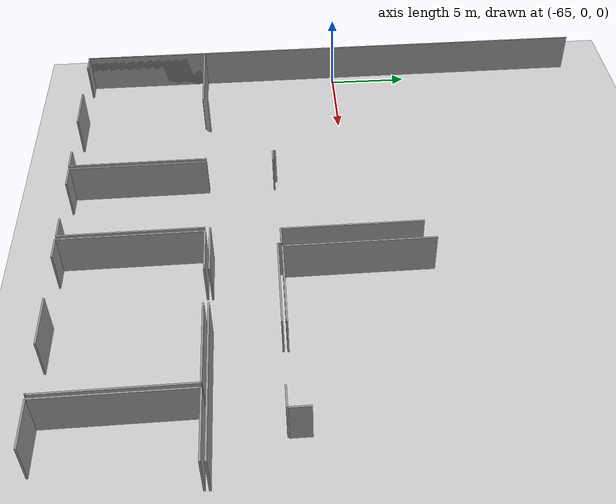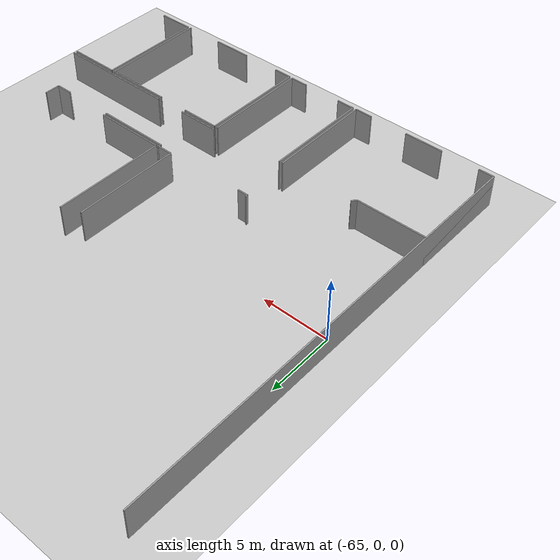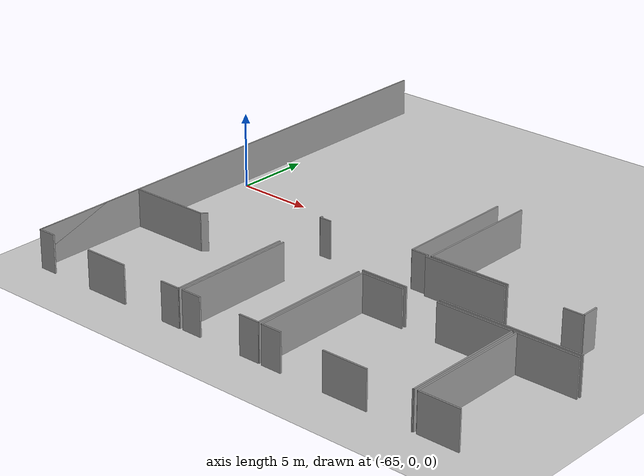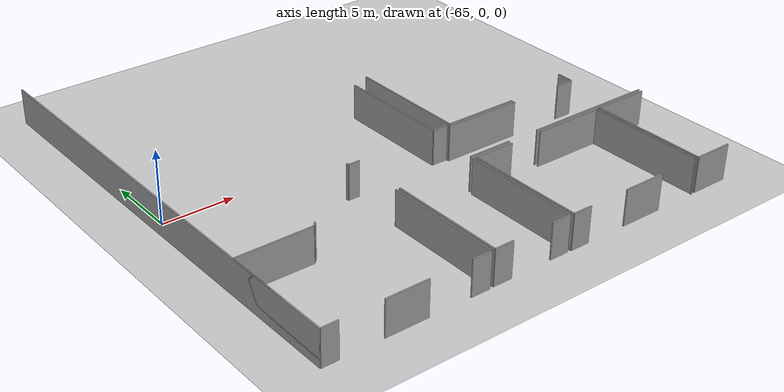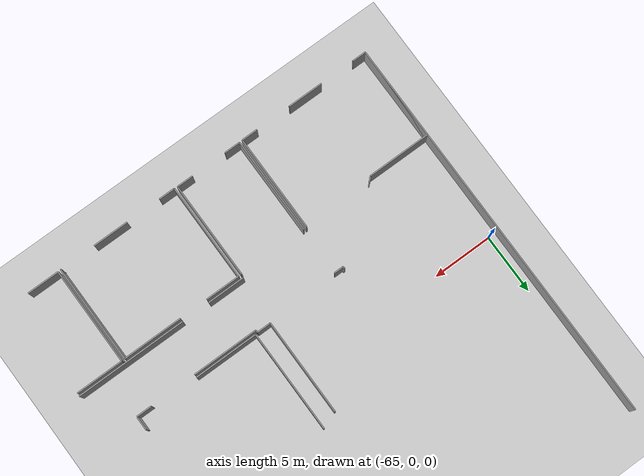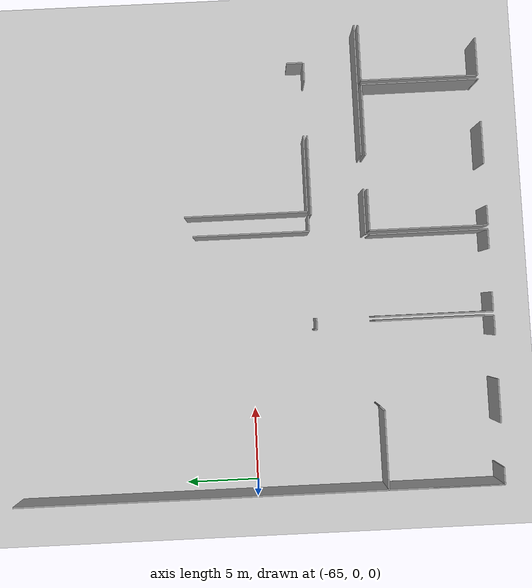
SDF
<sdf version="1.6">
 <world name="default">
  <model name="ground_plane">
   <static>1</static>
   <link name="link">
    <collision name="collision">
     <geometry><plane><normal>0 0 1</normal><size>100 100</size></plane></geometry>
     <surface><friction><ode><mu>100</mu><mu2>50</mu2></ode></friction></surface>
    </collision>
    <visual name="visual">
     <cast_shadows>0</cast_shadows>
     <geometry><plane><normal>0 0 1</normal><size>100 100</size></plane></geometry>
     <material>
      <script><uri>file://media/materials/scripts/gazebo.material</uri><name>Gazebo/Grey</name></script>
     </material>
    </visual>
   </link>
  </model>
  <model name="50041171">
   <static>1</static>
   <link name="Wall_24">
    <collision name="Wall_24_Collision">
     <geometry><box><size>5.40003935334 0.1 2.5</size></box></geometry>
     <pose>2.70001967667 0 1.25 0 0 0</pose>
    </collision>
    <visual name="Wall_24_Visual">
     <pose>2.70001967667 0 1.25 0 0 0</pose>
     <geometry><box><size>5.40003935334 0.1 2.5</size></box></geometry>
     <material>
      <script><uri>file://media/materials/scripts/gazebo.material</uri><name>Gazebo/Grey</name></script>
      <ambient>1 1 1 1</ambient>
     </material>
    </visual>
    <pose>24.7119907075 -21.0527652066 0 0 0 3.14159265359</pose>
   </link>
   <link name="Wall_25">
    <collision name="Wall_25_Collision">
     <geometry><box><size>8.60809790094 0.1 2.5</size></box></geometry>
     <pose>4.30404895047 0 1.25 0 0 0</pose>
    </collision>
    <visual name="Wall_25_Visual">
     <pose>4.30404895047 0 1.25 0 0 0</pose>
     <geometry><box><size>8.60809790094 0.1 2.5</size></box></geometry>
     <material>
      <script><uri>file://media/materials/scripts/gazebo.material</uri><name>Gazebo/Grey</name></script>
      <ambient>1 1 1 1</ambient>
     </material>
    </visual>
    <pose>19.3119513542 -21.0527652066 0 0 0 1.57079632679</pose>
   </link>
   <link name="Wall_78">
    <collision name="Wall_78_Collision">
     <geometry><box><size>0.184706785912 0.1 2.5</size></box></geometry>
     <pose>0.0923533929558 0 1.25 0 0 0</pose>
    </collision>
    <visual name="Wall_78_Visual">
     <pose>0.0923533929558 0 1.25 0 0 0</pose>
     <geometry><box><size>0.184706785912 0.1 2.5</size></box></geometry>
     <material>
      <script><uri>file://media/materials/scripts/gazebo.material</uri><name>Gazebo/Grey</name></script>
      <ambient>1 1 1 1</ambient>
     </material>
    </visual>
    <pose>19.0999511257 -21.2779678445 0 0 0 1.57079632679</pose>
   </link>
   <link name="Wall_79">
    <collision name="Wall_79_Collision">
     <geometry><box><size>1.16790545044 0.1 2.5</size></box></geometry>
     <pose>0.583952725219 0 1.25 0 0 0</pose>
    </collision>
    <visual name="Wall_79_Visual">
     <pose>0.583952725219 0 1.25 0 0 0</pose>
     <geometry><box><size>1.16790545044 0.1 2.5</size></box></geometry>
     <material>
      <script><uri>file://media/materials/scripts/gazebo.material</uri><name>Gazebo/Grey</name></script>
      <ambient>1 1 1 1</ambient>
     </material>
    </visual>
    <pose>19.0999511257 -21.0932610586 0 0 0 3.14159265359</pose>
   </link>
   <link name="Wall_80">
    <collision name="Wall_80_Collision">
     <geometry><box><size>8.12278240779 0.1 2.5</size></box></geometry>
     <pose>4.06139120389 0 1.25 0 0 0</pose>
    </collision>
    <visual name="Wall_80_Visual">
     <pose>4.06139120389 0 1.25 0 0 0</pose>
     <geometry><box><size>8.12278240779 0.1 2.5</size></box></geometry>
     <material>
      <script><uri>file://media/materials/scripts/gazebo.material</uri><name>Gazebo/Grey</name></script>
      <ambient>1 1 1 1</ambient>
     </material>
    </visual>
    <pose>17.9320456753 -21.0932610586 0 0 0 1.57079632679</pose>
   </link>
   <link name="Wall_101">
    <collision name="Wall_101_Collision">
     <geometry><box><size>9.36901369115 0.1 2.5</size></box></geometry>
     <pose>4.68450684558 0 1.25 0 0 0</pose>
    </collision>
    <visual name="Wall_101_Visual">
     <pose>4.68450684558 0 1.25 0 0 0</pose>
     <geometry><box><size>9.36901369115 0.1 2.5</size></box></geometry>
     <material>
      <script><uri>file://media/materials/scripts/gazebo.material</uri><name>Gazebo/Grey</name></script>
      <ambient>1 1 1 1</ambient>
     </material>
    </visual>
    <pose>32.4732302107 -25.0291024266 0 0 0 3.14159265359</pose>
   </link>
   <link name="Wall_102">
    <collision name="Wall_102_Collision">
     <geometry><box><size>3.18025732004 0.1 2.5</size></box></geometry>
     <pose>1.59012866002 0 1.25 0 0 0</pose>
    </collision>
    <visual name="Wall_102_Visual">
     <pose>1.59012866002 0 1.25 0 0 0</pose>
     <geometry><box><size>3.18025732004 0.1 2.5</size></box></geometry>
     <material>
      <script><uri>file://media/materials/scripts/gazebo.material</uri><name>Gazebo/Grey</name></script>
      <ambient>1 1 1 1</ambient>
     </material>
    </visual>
    <pose>20.7375576812 -25.0291024266 0 0 0 3.14159265359</pose>
   </link>
   <link name="Wall_103">
    <collision name="Wall_103_Collision">
     <geometry><box><size>0.181406183552 0.1 2.5</size></box></geometry>
     <pose>0.0907030917758 0 1.25 0 0 0</pose>
    </collision>
    <visual name="Wall_103_Visual">
     <pose>0.0907030917758 0 1.25 0 0 0</pose>
     <geometry><box><size>0.181406183552 0.1 2.5</size></box></geometry>
     <material>
      <script><uri>file://media/materials/scripts/gazebo.material</uri><name>Gazebo/Grey</name></script>
      <ambient>1 1 1 1</ambient>
     </material>
    </visual>
    <pose>11.0739017563 -21.1181425225 0 0 0 -1.57079632679</pose>
   </link>
   <link name="Wall_104">
    <collision name="Wall_104_Collision">
     <geometry><box><size>0.812836804255 0.1 2.5</size></box></geometry>
     <pose>0.406418402128 0 1.25 0 0 0</pose>
    </collision>
    <visual name="Wall_104_Visual">
     <pose>0.406418402128 0 1.25 0 0 0</pose>
     <geometry><box><size>0.812836804255 0.1 2.5</size></box></geometry>
     <material>
      <script><uri>file://media/materials/scripts/gazebo.material</uri><name>Gazebo/Grey</name></script>
      <ambient>1 1 1 1</ambient>
     </material>
    </visual>
    <pose>11.0739017563 -21.2995487061 0 0 0 0.0</pose>
   </link>
   <link name="Wall_105">
    <collision name="Wall_105_Collision">
     <geometry><box><size>5.59820244118 0.1 2.5</size></box></geometry>
     <pose>2.79910122059 0 1.25 0 0 0</pose>
    </collision>
    <visual name="Wall_105_Visual">
     <pose>2.79910122059 0 1.25 0 0 0</pose>
     <geometry><box><size>5.59820244118 0.1 2.5</size></box></geometry>
     <material>
      <script><uri>file://media/materials/scripts/gazebo.material</uri><name>Gazebo/Grey</name></script>
      <ambient>1 1 1 1</ambient>
     </material>
    </visual>
    <pose>19.0942385447 -21.2995487061 0 0 0 0.0</pose>
   </link>
   <link name="Wall_106">
    <collision name="Wall_106_Collision">
     <geometry><box><size>1.28964689902 0.1 2.5</size></box></geometry>
     <pose>0.64482344951 0 1.25 0 0 0</pose>
    </collision>
    <visual name="Wall_106_Visual">
     <pose>0.64482344951 0 1.25 0 0 0</pose>
     <geometry><box><size>1.28964689902 0.1 2.5</size></box></geometry>
     <material>
      <script><uri>file://media/materials/scripts/gazebo.material</uri><name>Gazebo/Grey</name></script>
      <ambient>1 1 1 1</ambient>
     </material>
    </visual>
    <pose>28.6120332345 -21.2995487061 0 0 0 0.0</pose>
   </link>
   <link name="Wall_126">
    <collision name="Wall_126_Collision">
     <geometry><box><size>1.13921559915 0.1 2.5</size></box></geometry>
     <pose>0.569607799577 0 1.25 0 0 0</pose>
    </collision>
    <visual name="Wall_126_Visual">
     <pose>0.569607799577 0 1.25 0 0 0</pose>
     <geometry><box><size>1.13921559915 0.1 2.5</size></box></geometry>
     <material>
      <script><uri>file://media/materials/scripts/gazebo.material</uri><name>Gazebo/Grey</name></script>
      <ambient>1 1 1 1</ambient>
     </material>
    </visual>
    <pose>29.9106933169 -21.2408995411 0 0 0 1.57079632679</pose>
   </link>
   <link name="Wall_308">
    <collision name="Wall_308_Collision">
     <geometry><box><size>1.3678457857 0.1 2.5</size></box></geometry>
     <pose>0.683922892851 0 1.25 0 0 0</pose>
    </collision>
    <visual name="Wall_308_Visual">
     <pose>0.683922892851 0 1.25 0 0 0</pose>
     <geometry><box><size>1.3678457857 0.1 2.5</size></box></geometry>
     <material>
      <script><uri>file://media/materials/scripts/gazebo.material</uri><name>Gazebo/Grey</name></script>
      <ambient>1 1 1 1</ambient>
     </material>
    </visual>
    <pose>11.5130088164 -33.5511307737 0 0 0 3.14159265359</pose>
   </link>
   <link name="Wall_309">
    <collision name="Wall_309_Collision">
     <geometry><box><size>3.00837210483 0.1 2.5</size></box></geometry>
     <pose>1.50418605242 0 1.25 0 0 0</pose>
    </collision>
    <visual name="Wall_309_Visual">
     <pose>1.50418605242 0 1.25 0 0 0</pose>
     <geometry><box><size>3.00837210483 0.1 2.5</size></box></geometry>
     <material>
      <script><uri>file://media/materials/scripts/gazebo.material</uri><name>Gazebo/Grey</name></script>
      <ambient>1 1 1 1</ambient>
     </material>
    </visual>
    <pose>7.14656578672 -33.5511307737 0 0 0 3.14159265359</pose>
   </link>
   <link name="Wall_310">
    <collision name="Wall_310_Collision">
     <geometry><box><size>1.16904796664 0.1 2.5</size></box></geometry>
     <pose>0.584523983319 0 1.25 0 0 0</pose>
    </collision>
    <visual name="Wall_310_Visual">
     <pose>0.584523983319 0 1.25 0 0 0</pose>
     <geometry><box><size>1.16904796664 0.1 2.5</size></box></geometry>
     <material>
      <script><uri>file://media/materials/scripts/gazebo.material</uri><name>Gazebo/Grey</name></script>
      <ambient>1 1 1 1</ambient>
     </material>
    </visual>
    <pose>1.16904796664 -33.5511307737 0 0 0 3.14159265359</pose>
   </link>
   <link name="Wall_311">
    <collision name="Wall_311_Collision">
     <geometry><box><size>7.91547919034 0.1 2.5</size></box></geometry>
     <pose>3.95773959517 0 1.25 0 0 0</pose>
    </collision>
    <visual name="Wall_311_Visual">
     <pose>3.95773959517 0 1.25 0 0 0</pose>
     <geometry><box><size>7.91547919034 0.1 2.5</size></box></geometry>
     <material>
      <script><uri>file://media/materials/scripts/gazebo.material</uri><name>Gazebo/Grey</name></script>
      <ambient>1 1 1 1</ambient>
     </material>
    </visual>
    <pose>0.0 -33.5511307737 0 0 0 1.57079632679</pose>
   </link>
   <link name="Wall_312">
    <collision name="Wall_312_Collision">
     <geometry><box><size>5.36043212502 0.1 2.5</size></box></geometry>
     <pose>2.68021606251 0 1.25 0 0 0</pose>
    </collision>
    <visual name="Wall_312_Visual">
     <pose>2.68021606251 0 1.25 0 0 0</pose>
     <geometry><box><size>5.36043212502 0.1 2.5</size></box></geometry>
     <material>
      <script><uri>file://media/materials/scripts/gazebo.material</uri><name>Gazebo/Grey</name></script>
      <ambient>1 1 1 1</ambient>
     </material>
    </visual>
    <pose>0.0 -25.6356515833 0 0 0 0.0</pose>
   </link>
   <link name="Wall_313">
    <collision name="Wall_313_Collision">
     <geometry><box><size>0.445233473075 0.1 2.5</size></box></geometry>
     <pose>0.222616736537 0 1.25 0 0 0</pose>
    </collision>
    <visual name="Wall_313_Visual">
     <pose>0.222616736537 0 1.25 0 0 0</pose>
     <geometry><box><size>0.445233473075 0.1 2.5</size></box></geometry>
     <material>
      <script><uri>file://media/materials/scripts/gazebo.material</uri><name>Gazebo/Grey</name></script>
      <ambient>1 1 1 1</ambient>
     </material>
    </visual>
    <pose>5.36043212502 -25.6356515833 0 0 0 0.782978813279</pose>
   </link>
   <link name="Wall_314">
    <collision name="Wall_314_Collision">
     <geometry><box><size>8.22955230756 0.1 2.5</size></box></geometry>
     <pose>4.11477615378 0 1.25 0 0 0</pose>
    </collision>
    <visual name="Wall_314_Visual">
     <pose>4.11477615378 0 1.25 0 0 0</pose>
     <geometry><box><size>8.22955230756 0.1 2.5</size></box></geometry>
     <material>
      <script><uri>file://media/materials/scripts/gazebo.material</uri><name>Gazebo/Grey</name></script>
      <ambient>1 1 1 1</ambient>
     </material>
    </visual>
    <pose>11.5014567082 -25.3215865742 0 0 0 -1.56939259162</pose>
   </link>
   <link name="Wall_315">
    <collision name="Wall_315_Collision">
     <geometry><box><size>1.3880302386 0.1 2.5</size></box></geometry>
     <pose>0.694015119298 0 1.25 0 0 0</pose>
    </collision>
    <visual name="Wall_315_Visual">
     <pose>0.694015119298 0 1.25 0 0 0</pose>
     <geometry><box><size>1.3880302386 0.1 2.5</size></box></geometry>
     <material>
      <script><uri>file://media/materials/scripts/gazebo.material</uri><name>Gazebo/Grey</name></script>
      <ambient>1 1 1 1</ambient>
     </material>
    </visual>
    <pose>17.5289913486 -33.5265032022 0 0 0 3.14159265359</pose>
   </link>
   <link name="Wall_316">
    <collision name="Wall_316_Collision">
     <geometry><box><size>1.36657632326 0.1 2.5</size></box></geometry>
     <pose>0.683288161628 0 1.25 0 0 0</pose>
    </collision>
    <visual name="Wall_316_Visual">
     <pose>0.683288161628 0 1.25 0 0 0</pose>
     <geometry><box><size>1.36657632326 0.1 2.5</size></box></geometry>
     <material>
      <script><uri>file://media/materials/scripts/gazebo.material</uri><name>Gazebo/Grey</name></script>
      <ambient>1 1 1 1</ambient>
     </material>
    </visual>
    <pose>13.1498536945 -33.5265032022 0 0 0 3.14159265359</pose>
   </link>
   <link name="Wall_317">
    <collision name="Wall_317_Collision">
     <geometry><box><size>8.21418370391 0.1 2.5</size></box></geometry>
     <pose>4.10709185196 0 1.25 0 0 0</pose>
    </collision>
    <visual name="Wall_317_Visual">
     <pose>4.10709185196 0 1.25 0 0 0</pose>
     <geometry><box><size>8.21418370391 0.1 2.5</size></box></geometry>
     <material>
      <script><uri>file://media/materials/scripts/gazebo.material</uri><name>Gazebo/Grey</name></script>
      <ambient>1 1 1 1</ambient>
     </material>
    </visual>
    <pose>11.7832773712 -33.5265032022 0 0 0 1.57079632679</pose>
   </link>
   <link name="Wall_318">
    <collision name="Wall_318_Collision">
     <geometry><box><size>8.2141992774 0.1 2.5</size></box></geometry>
     <pose>4.1070996387 0 1.25 0 0 0</pose>
    </collision>
    <visual name="Wall_318_Visual">
     <pose>4.1070996387 0 1.25 0 0 0</pose>
     <geometry><box><size>8.2141992774 0.1 2.5</size></box></geometry>
     <material>
      <script><uri>file://media/materials/scripts/gazebo.material</uri><name>Gazebo/Grey</name></script>
      <ambient>1 1 1 1</ambient>
     </material>
    </visual>
    <pose>17.5129961218 -25.3123194983 0 0 0 -1.56884906007</pose>
   </link>
   <link name="Wall_319">
    <collision name="Wall_319_Collision">
     <geometry><box><size>0.0672815096447 0.1 2.5</size></box></geometry>
     <pose>0.0336407548224 0 1.25 0 0 0</pose>
    </collision>
    <visual name="Wall_319_Visual">
     <pose>0.0336407548224 0 1.25 0 0 0</pose>
     <geometry><box><size>0.0672815096447 0.1 2.5</size></box></geometry>
     <material>
      <script><uri>file://media/materials/scripts/gazebo.material</uri><name>Gazebo/Grey</name></script>
      <ambient>1 1 1 1</ambient>
     </material>
    </visual>
    <pose>28.1917142186 -33.5602709033 0 0 0 3.14159265359</pose>
   </link>
   <link name="Wall_320">
    <collision name="Wall_320_Collision">
     <geometry><box><size>3.0185278044 0.1 2.5</size></box></geometry>
     <pose>1.5092639022 0 1.25 0 0 0</pose>
    </collision>
    <visual name="Wall_320_Visual">
     <pose>1.5092639022 0 1.25 0 0 0</pose>
     <geometry><box><size>3.0185278044 0.1 2.5</size></box></geometry>
     <material>
      <script><uri>file://media/materials/scripts/gazebo.material</uri><name>Gazebo/Grey</name></script>
      <ambient>1 1 1 1</ambient>
     </material>
    </visual>
    <pose>25.1471624341 -33.5602709033 0 0 0 3.14159265359</pose>
   </link>
   <link name="Wall_321">
    <collision name="Wall_321_Collision">
     <geometry><box><size>1.37749370029 0.1 2.5</size></box></geometry>
     <pose>0.688746850146 0 1.25 0 0 0</pose>
    </collision>
    <visual name="Wall_321_Visual">
     <pose>0.688746850146 0 1.25 0 0 0</pose>
     <geometry><box><size>1.37749370029 0.1 2.5</size></box></geometry>
     <material>
      <script><uri>file://media/materials/scripts/gazebo.material</uri><name>Gazebo/Grey</name></script>
      <ambient>1 1 1 1</ambient>
     </material>
    </visual>
    <pose>19.1704062915 -33.5602709033 0 0 0 3.14159265359</pose>
   </link>
   <link name="Wall_322">
    <collision name="Wall_322_Collision">
     <geometry><box><size>8.24693583502 0.1 2.5</size></box></geometry>
     <pose>4.12346791751 0 1.25 0 0 0</pose>
    </collision>
    <visual name="Wall_322_Visual">
     <pose>4.12346791751 0 1.25 0 0 0</pose>
     <geometry><box><size>8.24693583502 0.1 2.5</size></box></geometry>
     <material>
      <script><uri>file://media/materials/scripts/gazebo.material</uri><name>Gazebo/Grey</name></script>
      <ambient>1 1 1 1</ambient>
     </material>
    </visual>
    <pose>17.7929125912 -33.5602709033 0 0 0 1.57079632679</pose>
   </link>
   <link name="Wall_323">
    <collision name="Wall_323_Collision">
     <geometry><box><size>2.91989057234 0.1 2.5</size></box></geometry>
     <pose>1.45994528617 0 1.25 0 0 0</pose>
    </collision>
    <visual name="Wall_323_Visual">
     <pose>1.45994528617 0 1.25 0 0 0</pose>
     <geometry><box><size>2.91989057234 0.1 2.5</size></box></geometry>
     <material>
      <script><uri>file://media/materials/scripts/gazebo.material</uri><name>Gazebo/Grey</name></script>
      <ambient>1 1 1 1</ambient>
     </material>
    </visual>
    <pose>17.7929125912 -25.3133350683 0 0 0 0.0</pose>
   </link>
   <link name="Wall_324">
    <collision name="Wall_324_Collision">
     <geometry><box><size>5.05779227786 0.1 2.5</size></box></geometry>
     <pose>2.52889613893 0 1.25 0 0 0</pose>
    </collision>
    <visual name="Wall_324_Visual">
     <pose>2.52889613893 0 1.25 0 0 0</pose>
     <geometry><box><size>5.05779227786 0.1 2.5</size></box></geometry>
     <material>
      <script><uri>file://media/materials/scripts/gazebo.material</uri><name>Gazebo/Grey</name></script>
      <ambient>1 1 1 1</ambient>
     </material>
    </visual>
    <pose>23.1078979606 -25.3133350683 0 0 0 0.0</pose>
   </link>
   <link name="Wall_325">
    <collision name="Wall_325_Collision">
     <geometry><box><size>8.24697689547 0.1 2.5</size></box></geometry>
     <pose>4.12348844774 0 1.25 0 0 0</pose>
    </collision>
    <visual name="Wall_325_Visual">
     <pose>4.12348844774 0 1.25 0 0 0</pose>
     <geometry><box><size>8.24697689547 0.1 2.5</size></box></geometry>
     <material>
      <script><uri>file://media/materials/scripts/gazebo.material</uri><name>Gazebo/Grey</name></script>
      <ambient>1 1 1 1</ambient>
     </material>
    </visual>
    <pose>28.1656902385 -25.3133350683 0 0 0 -1.5676407434</pose>
   </link>
   <link name="Wall_327">
    <collision name="Wall_327_Collision">
     <geometry><box><size>2.70763645134 0.1 2.5</size></box></geometry>
     <pose>1.35381822567 0 1.25 0 0 0</pose>
    </collision>
    <visual name="Wall_327_Visual">
     <pose>1.35381822567 0 1.25 0 0 0</pose>
     <geometry><box><size>2.70763645134 0.1 2.5</size></box></geometry>
     <material>
      <script><uri>file://media/materials/scripts/gazebo.material</uri><name>Gazebo/Grey</name></script>
      <ambient>1 1 1 1</ambient>
     </material>
    </visual>
    <pose>31.1554012453 -33.5402133966 0 0 0 3.14159265359</pose>
   </link>
   <link name="Wall_328">
    <collision name="Wall_328_Collision">
     <geometry><box><size>8.24135020026 0.1 2.5</size></box></geometry>
     <pose>4.12067510013 0 1.25 0 0 0</pose>
    </collision>
    <visual name="Wall_328_Visual">
     <pose>4.12067510013 0 1.25 0 0 0</pose>
     <geometry><box><size>8.24135020026 0.1 2.5</size></box></geometry>
     <material>
      <script><uri>file://media/materials/scripts/gazebo.material</uri><name>Gazebo/Grey</name></script>
      <ambient>1 1 1 1</ambient>
     </material>
    </visual>
    <pose>28.447764794 -33.5402133966 0 0 0 1.57079632679</pose>
   </link>
   <link name="Wall_329">
    <collision name="Wall_329_Collision">
     <geometry><box><size>4.00972408234 0.1 2.5</size></box></geometry>
     <pose>2.00486204117 0 1.25 0 0 0</pose>
    </collision>
    <visual name="Wall_329_Visual">
     <pose>2.00486204117 0 1.25 0 0 0</pose>
     <geometry><box><size>4.00972408234 0.1 2.5</size></box></geometry>
     <material>
      <script><uri>file://media/materials/scripts/gazebo.material</uri><name>Gazebo/Grey</name></script>
      <ambient>1 1 1 1</ambient>
     </material>
    </visual>
    <pose>28.447764794 -25.2988631964 0 0 0 0.0</pose>
   </link>
   <link name="Wall_412">
    <collision name="Wall_412_Collision">
     <geometry><box><size>33.5602709033 0.1 2.5</size></box></geometry>
     <pose>16.7801354516 0 1.25 0 0 0</pose>
    </collision>
    <visual name="Wall_412_Visual">
     <pose>16.7801354516 0 1.25 0 0 0</pose>
     <geometry><box><size>33.5602709033 0.1 2.5</size></box></geometry>
     <material>
      <script><uri>file://media/materials/scripts/gazebo.material</uri><name>Gazebo/Grey</name></script>
      <ambient>1 1 1 1</ambient>
     </material>
    </visual>
    <pose>0.0 -33.5602709033 0 0 0 1.57079632679</pose>
   </link>
   <pose>-65.65 16.7602709033 0 0 0 0</pose>
  </model>
 </world>
</sdf>
